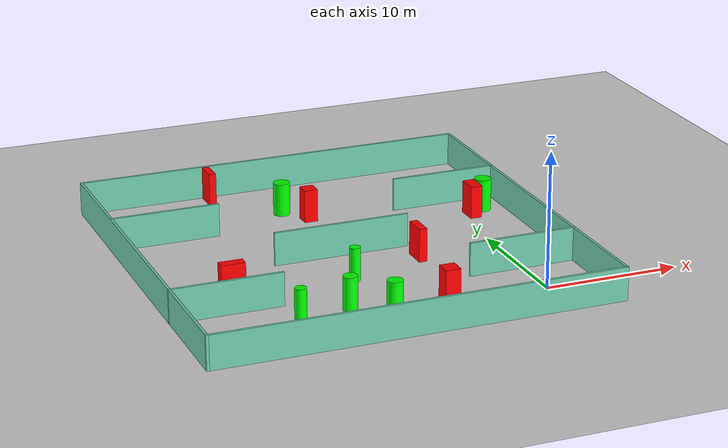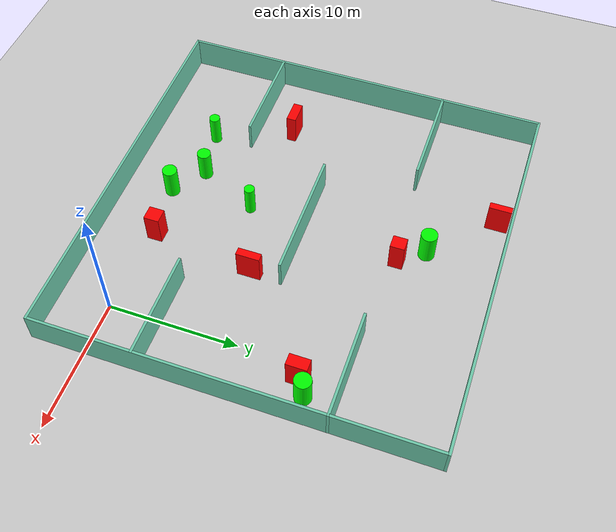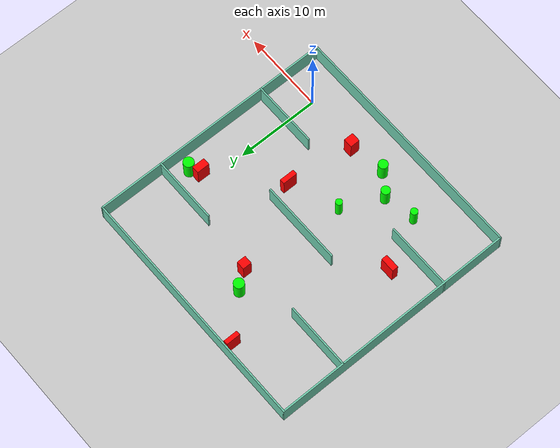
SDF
<sdf version="1.7">
 <world name="default">
  <light name="sun" type="directional">
   <pose>0 0 10 0 -0 0</pose>
   <diffuse>0.8 0.8 0.8 1</diffuse>
   <specular>0.2 0.2 0.2 1</specular>
   <attenuation>
    <range>1000</range>
    <constant>0.9</constant>
    <linear>0.01</linear>
    <quadratic>0.001</quadratic>
   </attenuation>
   <direction>-0.5 0.1 -0.9</direction>
   <spot><inner_angle>0</inner_angle><outer_angle>0</outer_angle><falloff>0</falloff></spot>
  </light>
  <model name="ground_plane">
   <static>1</static>
   <link name="link">
    <collision name="collision">
     <geometry><plane><normal>0 0 1</normal><size>100 100</size></plane></geometry>
     <surface>
      <contact><collide_bitmask>65535</collide_bitmask></contact>
      <friction><ode><mu>100</mu><mu2>50</mu2></ode></friction>
     </surface>
    </collision>
    <visual name="visual">
     <cast_shadows>0</cast_shadows>
     <geometry><plane><normal>0 0 1</normal><size>100 100</size></plane></geometry>
     <material>
      <script><uri>file://media/materials/scripts/gazebo.material</uri><name>Gazebo/Grey</name></script>
     </material>
    </visual>
   </link>
  </model>
  <gravity>0 0 -9.8</gravity>
  <magnetic_field>6e-06 2.3e-05 -4.2e-05</magnetic_field>
  <atmosphere type="adiabatic"/>
  <physics type="ode">
   <max_step_size>0.001</max_step_size>
   <real_time_factor>1</real_time_factor>
   <real_time_update_rate>1000</real_time_update_rate>
  </physics>
  <scene><ambient>0.4 0.4 0.4 1</ambient><background>0.7 0.7 0.7 1</background><shadows>1</shadows></scene>
  <spherical_coordinates>
   <surface_model>EARTH_WGS84</surface_model>
   <latitude_deg>0</latitude_deg>
   <longitude_deg>0</longitude_deg>
   <elevation>0</elevation>
   <heading_deg>0</heading_deg>
  </spherical_coordinates>
  <model name="my_base_walls">
   <link name="Wall_10">
    <collision name="Wall_10_Collision">
     <geometry><box><size>8.2 0.2 2.5</size></box></geometry>
     <pose>0 0 1.25 0 -0 0</pose>
    </collision>
    <visual name="Wall_10_Visual">
     <pose>0 0 1.25 0 -0 0</pose>
     <geometry><box><size>8.2 0.2 2.5</size></box></geometry>
     <material>
      <script><uri>file://media/materials/scripts/gazebo.material</uri><name>Gazebo/Grey</name></script>
      <ambient>0.435294 0.796078 0.67451 1</ambient>
     </material>
     <meta><layer>0</layer></meta>
    </visual>
    <pose>-11 -7 0 0 -0 0</pose>
   </link>
   <link name="Wall_12">
    <collision name="Wall_12_Collision">
     <geometry><box><size>8.2 0.2 2.5</size></box></geometry>
     <pose>0 0 1.25 0 -0 0</pose>
    </collision>
    <visual name="Wall_12_Visual">
     <pose>0 0 1.25 0 -0 0</pose>
     <geometry><box><size>8.2 0.2 2.5</size></box></geometry>
     <material>
      <script><uri>file://media/materials/scripts/gazebo.material</uri><name>Gazebo/Grey</name></script>
      <ambient>0.435294 0.796078 0.67451 1</ambient>
     </material>
     <meta><layer>0</layer></meta>
    </visual>
    <pose>-11 7 0 0 -0 0</pose>
   </link>
   <link name="Wall_14">
    <collision name="Wall_14_Collision">
     <geometry><box><size>8.2 0.2 2.5</size></box></geometry>
     <pose>0 0 1.25 0 -0 0</pose>
    </collision>
    <visual name="Wall_14_Visual">
     <pose>0 0 1.25 0 -0 0</pose>
     <geometry><box><size>8.2 0.2 2.5</size></box></geometry>
     <material>
      <script><uri>file://media/materials/scripts/gazebo.material</uri><name>Gazebo/Grey</name></script>
      <ambient>0.435294 0.796078 0.67451 1</ambient>
     </material>
     <meta><layer>0</layer></meta>
    </visual>
    <pose>11 7 0 0 -0 3.14159</pose>
   </link>
   <link name="Wall_16">
    <collision name="Wall_16_Collision">
     <geometry><box><size>10.2 0.2 2.5</size></box></geometry>
     <pose>0 0 1.25 0 -0 0</pose>
    </collision>
    <visual name="Wall_16_Visual">
     <pose>0 0 1.25 0 -0 0</pose>
     <geometry><box><size>10.2 0.2 2.5</size></box></geometry>
     <material>
      <script><uri>file://media/materials/scripts/gazebo.material</uri><name>Gazebo/Grey</name></script>
      <ambient>0.435294 0.796078 0.67451 1</ambient>
     </material>
     <meta><layer>0</layer></meta>
    </visual>
    <pose>0 0 0 0 -0 3.14159</pose>
   </link>
   <link name="Wall_2">
    <collision name="Wall_2_Collision">
     <geometry><box><size>30.2 0.2 2.5</size></box></geometry>
     <pose>0 0 1.25 0 -0 0</pose>
    </collision>
    <visual name="Wall_2_Visual">
     <pose>0 0 1.25 0 -0 0</pose>
     <geometry><box><size>30.2 0.2 2.5</size></box></geometry>
     <material>
      <script><uri>file://media/materials/scripts/gazebo.material</uri><name>Gazebo/Grey</name></script>
      <ambient>0.435294 0.796078 0.67451 1</ambient>
     </material>
     <meta><layer>0</layer></meta>
    </visual>
    <pose>0 -15 0 0 -0 3.14159</pose>
   </link>
   <link name="Wall_3">
    <collision name="Wall_3_Collision">
     <geometry><box><size>30.2 0.2 2.5</size></box></geometry>
     <pose>0 0 1.25 0 -0 0</pose>
    </collision>
    <visual name="Wall_3_Visual">
     <pose>0 0 1.25 0 -0 0</pose>
     <geometry><box><size>30.2 0.2 2.5</size></box></geometry>
     <material>
      <script><uri>file://media/materials/scripts/gazebo.material</uri><name>Gazebo/Grey</name></script>
      <ambient>0.435294 0.796078 0.67451 1</ambient>
     </material>
     <meta><layer>0</layer></meta>
    </visual>
    <pose>-15 0 0 0 -0 1.5708</pose>
   </link>
   <link name="Wall_4">
    <collision name="Wall_4_Collision">
     <geometry><box><size>30.2 0.2 2.5</size></box></geometry>
     <pose>0 0 1.25 0 -0 0</pose>
    </collision>
    <visual name="Wall_4_Visual">
     <pose>0 0 1.25 0 -0 0</pose>
     <geometry><box><size>30.2 0.2 2.5</size></box></geometry>
     <material>
      <script><uri>file://media/materials/scripts/gazebo.material</uri><name>Gazebo/Grey</name></script>
      <ambient>0.435294 0.796078 0.67451 1</ambient>
     </material>
     <meta><layer>0</layer></meta>
    </visual>
    <pose>0 15 0 0 -0 0</pose>
   </link>
   <link name="Wall_6">
    <collision name="Wall_6_Collision">
     <geometry><box><size>30.2 0.2 2.5</size></box></geometry>
     <pose>0 0 1.25 0 -0 0</pose>
    </collision>
    <visual name="Wall_6_Visual">
     <pose>0 0 1.25 0 -0 0</pose>
     <geometry><box><size>30.2 0.2 2.5</size></box></geometry>
     <material>
      <script><uri>file://media/materials/scripts/gazebo.material</uri><name>Gazebo/Grey</name></script>
      <ambient>0.435294 0.796078 0.67451 1</ambient>
     </material>
     <meta><layer>0</layer></meta>
    </visual>
    <pose>15 0 0 0 -0 1.5708</pose>
   </link>
   <link name="Wall_8">
    <collision name="Wall_8_Collision">
     <geometry><box><size>8.2 0.2 2.5</size></box></geometry>
     <pose>0 0 1.25 0 -0 0</pose>
    </collision>
    <visual name="Wall_8_Visual">
     <pose>0 0 1.25 0 -0 0</pose>
     <geometry><box><size>8.2 0.2 2.5</size></box></geometry>
     <material>
      <script><uri>file://media/materials/scripts/gazebo.material</uri><name>Gazebo/Grey</name></script>
      <ambient>0.435294 0.796078 0.67451 1</ambient>
     </material>
     <meta><layer>0</layer></meta>
    </visual>
    <pose>11 -7 0 0 -0 3.14159</pose>
   </link>
   <static>1</static>
   <pose>-11 11 0 0 -0 0</pose>
  </model>
  <model name="cylinder1">
   <static>1</static>
   <link name="link">
    <inertial>
     <mass>1</mass>
     <inertia><ixx>0.5</ixx><ixy>0</ixy><ixz>0</ixz><iyy>0.5</iyy><iyz>0</iyz><izz>1</izz></inertia>
    </inertial>
    <collision name="collision">
     <geometry><cylinder><radius>0.6381288202946367</radius><length>2.5</length></cylinder></geometry>
    </collision>
    <visual name="visual">
     <geometry><cylinder><radius>0.6381288202946367</radius><length>2.5</length></cylinder></geometry>
     <material>
      <ambient>0 1 0 1</ambient>
      <diffuse>0 1 0 1</diffuse>
      <specular>0.1 0.1 0.1 1</specular>
      <emissive>0 0 0 0</emissive>
     </material>
    </visual>
   </link>
   <pose>2.2157705664870235 15.63510042140863 1.25 0 0 0</pose>
  </model>
  <model name="cylinder2">
   <static>1</static>
   <link name="link">
    <inertial>
     <mass>1</mass>
     <inertia><ixx>0.5</ixx><ixy>0</ixy><ixz>0</ixz><iyy>0.5</iyy><iyz>0</iyz><izz>1</izz></inertia>
    </inertial>
    <collision name="collision">
     <geometry><cylinder><radius>0.5728504198593931</radius><length>2.5</length></cylinder></geometry>
    </collision>
    <visual name="visual">
     <geometry><cylinder><radius>0.5728504198593931</radius><length>2.5</length></cylinder></geometry>
     <material>
      <ambient>0 1 0 1</ambient>
      <diffuse>0 1 0 1</diffuse>
      <specular>0.1 0.1 0.1 1</specular>
      <emissive>0 0 0 0</emissive>
     </material>
    </visual>
   </link>
   <pose>-11.499964444702641 -0.174846707516374 1.25 0 0 0</pose>
  </model>
  <model name="cylinder3">
   <static>1</static>
   <link name="link">
    <inertial>
     <mass>1</mass>
     <inertia><ixx>0.5</ixx><ixy>0</ixy><ixz>0</ixz><iyy>0.5</iyy><iyz>0</iyz><izz>1</izz></inertia>
    </inertial>
    <collision name="collision">
     <geometry><cylinder><radius>0.426672015959083</radius><length>2.5</length></cylinder></geometry>
    </collision>
    <visual name="visual">
     <geometry><cylinder><radius>0.426672015959083</radius><length>2.5</length></cylinder></geometry>
     <material>
      <ambient>0 1 0 1</ambient>
      <diffuse>0 1 0 1</diffuse>
      <specular>0.1 0.1 0.1 1</specular>
      <emissive>0 0 0 0</emissive>
     </material>
    </visual>
   </link>
   <pose>-17.832689174237142 0.9642652261776243 1.25 0 0 0</pose>
  </model>
  <model name="cylinder4">
   <static>1</static>
   <link name="link">
    <inertial>
     <mass>1</mass>
     <inertia><ixx>0.5</ixx><ixy>0</ixy><ixz>0</ixz><iyy>0.5</iyy><iyz>0</iyz><izz>1</izz></inertia>
    </inertial>
    <collision name="collision">
     <geometry><cylinder><radius>0.5325560592809688</radius><length>2.5</length></cylinder></geometry>
    </collision>
    <visual name="visual">
     <geometry><cylinder><radius>0.5325560592809688</radius><length>2.5</length></cylinder></geometry>
     <material>
      <ambient>0 1 0 1</ambient>
      <diffuse>0 1 0 1</diffuse>
      <specular>0.1 0.1 0.1 1</specular>
      <emissive>0 0 0 0</emissive>
     </material>
    </visual>
   </link>
   <pose>-13.997249216136622 1.6535986393014062 1.25 0 0 0</pose>
  </model>
  <model name="cylinder5">
   <static>1</static>
   <link name="link">
    <inertial>
     <mass>1</mass>
     <inertia><ixx>0.5</ixx><ixy>0</ixy><ixz>0</ixz><iyy>0.5</iyy><iyz>0</iyz><izz>1</izz></inertia>
    </inertial>
    <collision name="collision">
     <geometry><cylinder><radius>0.4032393777654534</radius><length>2.5</length></cylinder></geometry>
    </collision>
    <visual name="visual">
     <geometry><cylinder><radius>0.4032393777654534</radius><length>2.5</length></cylinder></geometry>
     <material>
      <ambient>0 1 0 1</ambient>
      <diffuse>0 1 0 1</diffuse>
      <specular>0.1 0.1 0.1 1</specular>
      <emissive>0 0 0 0</emissive>
     </material>
    </visual>
   </link>
   <pose>-11.813822074497182 6.353531335679417 1.25 0 0 0</pose>
  </model>
  <model name="cylinder6">
   <static>1</static>
   <link name="link">
    <inertial>
     <mass>1</mass>
     <inertia><ixx>0.5</ixx><ixy>0</ixy><ixz>0</ixz><iyy>0.5</iyy><iyz>0</iyz><izz>1</izz></inertia>
    </inertial>
    <collision name="collision">
     <geometry><cylinder><radius>0.6318629214846675</radius><length>2.5</length></cylinder></geometry>
    </collision>
    <visual name="visual">
     <geometry><cylinder><radius>0.6318629214846675</radius><length>2.5</length></cylinder></geometry>
     <material>
      <ambient>0 1 0 1</ambient>
      <diffuse>0 1 0 1</diffuse>
      <specular>0.1 0.1 0.1 1</specular>
      <emissive>0 0 0 0</emissive>
     </material>
    </visual>
   </link>
   <pose>-12.12281085139034 20.48075764228864 1.25 0 0 0</pose>
  </model>
  <model name="box1">
   <static>1</static>
   <link name="link">
    <inertial>
     <mass>1</mass>
     <inertia><ixx>0.083</ixx><ixy>0</ixy><ixz>0</ixz><iyy>0.083</iyy><iyz>0</iyz><izz>0.083</izz></inertia>
    </inertial>
    <collision name="collision">
     <geometry><box><size>0.8914748990489474 1.577559631543604 2.5</size></box></geometry>
    </collision>
    <visual name="visual">
     <geometry><box><size>0.8914748990489474 1.577559631543604 2.5</size></box></geometry>
     <material>
      <ambient>1 0 0 1</ambient>
      <diffuse>1 0 0 1</diffuse>
      <specular>0.1 0.1 0.1 1</specular>
      <emissive>0 0 0 0</emissive>
     </material>
    </visual>
    <sensor name="my_contact" type="contact">
     <contact><collision>box_collision</collision><topic>__default_topic__</topic></contact>
    </sensor>
   </link>
   <pose>1.0414450439809855 14.898137295164666 1.25 0 0 0</pose>
  </model>
  <model name="box2">
   <static>1</static>
   <link name="link">
    <inertial>
     <mass>1</mass>
     <inertia><ixx>0.083</ixx><ixy>0</ixy><ixz>0</ixz><iyy>0.083</iyy><iyz>0</iyz><izz>0.083</izz></inertia>
    </inertial>
    <collision name="collision">
     <geometry><box><size>1.027012895452152 1.1009660492424054 2.5</size></box></geometry>
    </collision>
    <visual name="visual">
     <geometry><box><size>1.027012895452152 1.1009660492424054 2.5</size></box></geometry>
     <material>
      <ambient>1 0 0 1</ambient>
      <diffuse>1 0 0 1</diffuse>
      <specular>0.1 0.1 0.1 1</specular>
      <emissive>0 0 0 0</emissive>
     </material>
    </visual>
    <sensor name="my_contact" type="contact">
     <contact><collision>box_collision</collision><topic>__default_topic__</topic></contact>
    </sensor>
   </link>
   <pose>-10.680708288489502 18.55678655172236 1.25 0 0 0</pose>
  </model>
  <model name="box3">
   <static>1</static>
   <link name="link">
    <inertial>
     <mass>1</mass>
     <inertia><ixx>0.083</ixx><ixy>0</ixy><ixz>0</ixz><iyy>0.083</iyy><iyz>0</iyz><izz>0.083</izz></inertia>
    </inertial>
    <collision name="collision">
     <geometry><box><size>1.7724735820933872 0.7528195394674848 2.5</size></box></geometry>
    </collision>
    <visual name="visual">
     <geometry><box><size>1.7724735820933872 0.7528195394674848 2.5</size></box></geometry>
     <material>
      <ambient>1 0 0 1</ambient>
      <diffuse>1 0 0 1</diffuse>
      <specular>0.1 0.1 0.1 1</specular>
      <emissive>0 0 0 0</emissive>
     </material>
    </visual>
    <sensor name="my_contact" type="contact">
     <contact><collision>box_collision</collision><topic>__default_topic__</topic></contact>
    </sensor>
   </link>
   <pose>-20.641549573189423 6.889556963535361 1.25 0 0 0</pose>
  </model>
  <model name="box4">
   <static>1</static>
   <link name="link">
    <inertial>
     <mass>1</mass>
     <inertia><ixx>0.083</ixx><ixy>0</ixy><ixz>0</ixz><iyy>0.083</iyy><iyz>0</iyz><izz>0.083</izz></inertia>
    </inertial>
    <collision name="collision">
     <geometry><box><size>0.6007032366862346 1.8198367493571745 2.5</size></box></geometry>
    </collision>
    <visual name="visual">
     <geometry><box><size>0.6007032366862346 1.8198367493571745 2.5</size></box></geometry>
     <material>
      <ambient>1 0 0 1</ambient>
      <diffuse>1 0 0 1</diffuse>
      <specular>0.1 0.1 0.1 1</specular>
      <emissive>0 0 0 0</emissive>
     </material>
    </visual>
    <sensor name="my_contact" type="contact">
     <contact><collision>box_collision</collision><topic>__default_topic__</topic></contact>
    </sensor>
   </link>
   <pose>-6.072939700153633 8.554568412019302 1.25 0 0 0</pose>
  </model>
  <model name="box5">
   <static>1</static>
   <link name="link">
    <inertial>
     <mass>1</mass>
     <inertia><ixx>0.083</ixx><ixy>0</ixy><ixz>0</ixz><iyy>0.083</iyy><iyz>0</iyz><izz>0.083</izz></inertia>
    </inertial>
    <collision name="collision">
     <geometry><box><size>1.1260608137449166 1.1874345844279661 2.5</size></box></geometry>
    </collision>
    <visual name="visual">
     <geometry><box><size>1.1260608137449166 1.1874345844279661 2.5</size></box></geometry>
     <material>
      <ambient>1 0 0 1</ambient>
      <diffuse>1 0 0 1</diffuse>
      <specular>0.1 0.1 0.1 1</specular>
      <emissive>0 0 0 0</emissive>
     </material>
    </visual>
    <sensor name="my_contact" type="contact">
     <contact><collision>box_collision</collision><topic>__default_topic__</topic></contact>
    </sensor>
   </link>
   <pose>-7.148265393798413 0.5216463485505702 1.25 0 0 0</pose>
  </model>
  <model name="box6">
   <static>1</static>
   <link name="link">
    <inertial>
     <mass>1</mass>
     <inertia><ixx>0.083</ixx><ixy>0</ixy><ixz>0</ixz><iyy>0.083</iyy><iyz>0</iyz><izz>0.083</izz></inertia>
    </inertial>
    <collision name="collision">
     <geometry><box><size>0.5339259099951021 1.7421337045602707 2.5</size></box></geometry>
    </collision>
    <visual name="visual">
     <geometry><box><size>0.5339259099951021 1.7421337045602707 2.5</size></box></geometry>
     <material>
      <ambient>1 0 0 1</ambient>
      <diffuse>1 0 0 1</diffuse>
      <specular>0.1 0.1 0.1 1</specular>
      <emissive>0 0 0 0</emissive>
     </material>
    </visual>
    <sensor name="my_contact" type="contact">
     <contact><collision>box_collision</collision><topic>__default_topic__</topic></contact>
    </sensor>
   </link>
   <pose>-16.364334085072404 24.932656776640222 1.25 0 0 0</pose>
  </model>
 </world>
</sdf>
